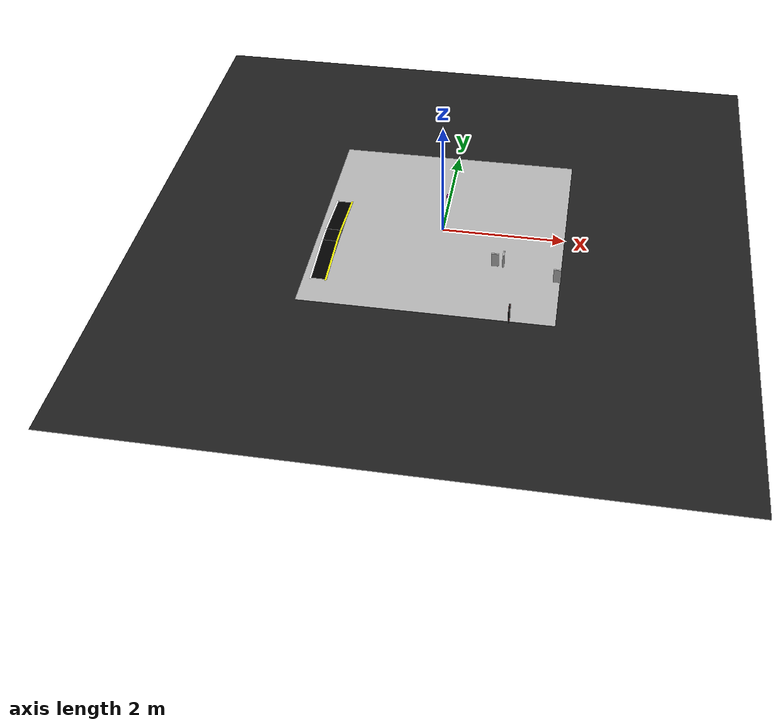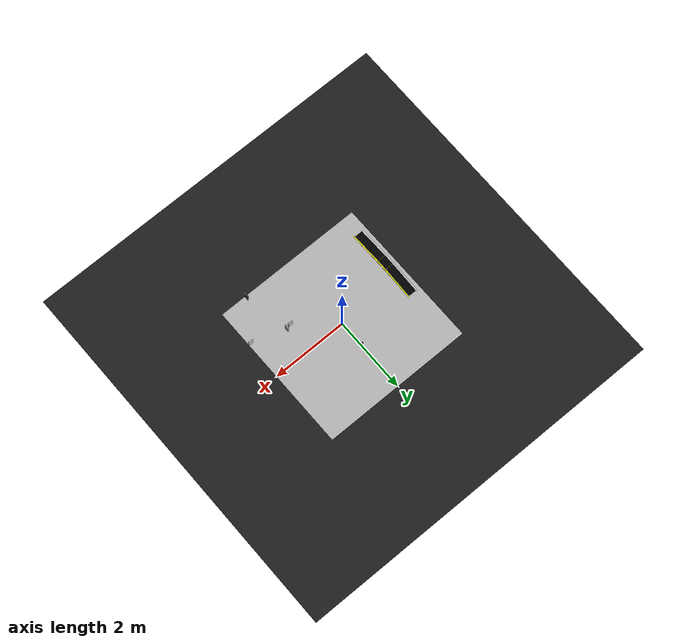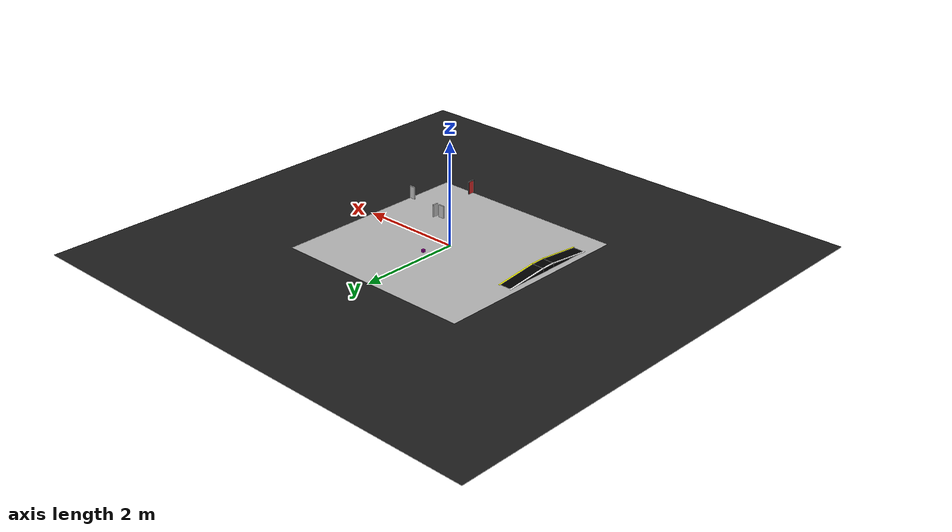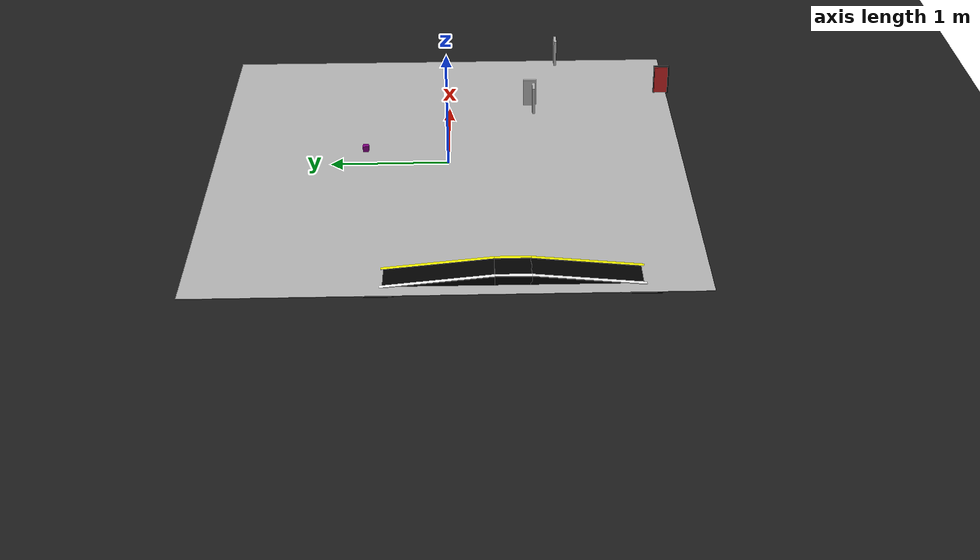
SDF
<sdf version="1.7">
 <world name="default">
  <scene>
   <ambient>0.8 0.8 0.8 1</ambient>
   <shadows>0</shadows>
   <grid>0</grid>
   <background>0.7 0.7 0.7 1</background>
  </scene>
  <model name="course">
   <static>1</static>
   <link name="course_link">
    <collision name="course_collision">
     <geometry><plane><normal>0 0 1</normal><size>4 4</size></plane></geometry>
     <surface><friction><ode><mu>100</mu><mu2>50</mu2></ode></friction></surface>
    </collision>
    <visual name="course_visual">
     <cast_shadows>0</cast_shadows>
     <geometry><plane><normal>0 0 1</normal><size>4 4</size></plane></geometry>
     <material>
      <script>
       <uri>model://turtlebot3_autorace_2020/course/materials/scripts</uri>
       <uri>model://turtlebot3_autorace_2020/course/materials/textures</uri>
       <name>course</name>
      </script>
     </material>
    </visual>
   </link>
   <pose>0 0 0 0 0 -3.14</pose>
  </model>
  <model name="traffic_light">
   <link name="traffic_light">
    <collision name="collision"><geometry><box><size>0.12 0.025 0.01</size></box></geometry></collision>
    <visual name="visual">
     <geometry><box><size>0.12 0.025 0.25</size></box></geometry>
     <material>
      <script>
       <uri>model://turtlebot3_autorace_2020/traffic_light/materials/scripts</uri>
       <uri>model://turtlebot3_autorace_2020/traffic_light/materials/textures</uri>
       <name>traffic_light_red</name>
      </script>
     </material>
    </visual>
   </link>
   <plugin name="traffic_light_plugin" filename="libtraffic_light_plugin.so"/>
   <static>1</static>
   <pose>1.3 -1.95 0.13 0 0 -1.57</pose>
  </model>
  <model name="traffic_light">
   <link name="traffic_light">
    <collision name="collision"><geometry><box><size>0.12 0.025 0.01</size></box></geometry></collision>
    <visual name="visual">
     <geometry><box><size>0.12 0.025 0.25</size></box></geometry>
     <material>
      <script>
       <uri>model://turtlebot3_autorace_2020/traffic_light/materials/scripts</uri>
       <uri>model://turtlebot3_autorace_2020/traffic_light/materials/textures</uri>
       <name>traffic_light_red</name>
      </script>
     </material>
    </visual>
   </link>
   <plugin name="traffic_light_plugin" filename="libtraffic_light_plugin.so"/>
   <static>1</static>
   <pose>1.3 -1.95 0.13 0 0 -1.57</pose>
  </model>
  <model name="cover_back">
   <static>1</static>
   <link name="cover_link">
    <pose>1.3 -1.95 0.13 0 0 -1.57</pose>
    <visual name="cover_visual">
     <pose>0 0.0135 0 0 -0 0</pose>
     <geometry><box><size>0.12 0.001 0.25</size></box></geometry>
     <material><ambient>0 0 0 1</ambient><diffuse>0 0 0 1</diffuse></material>
    </visual>
   </link>
  </model>
  <model name="black_cover_box">
   <static>1</static>
   <link name="black_cover_link">
    <pose>1.3 -1.951 0.13 0 0 -1.57</pose>
    <visual name="black_cover_visual">
     <geometry><box><size>0.14 0.023 0.27</size></box></geometry>
     <material><ambient>0 0 0 1</ambient><diffuse>0 0 0 1</diffuse></material>
    </visual>
   </link>
  </model>
  <model name="traffic_intersection">
   <static>1</static>
   <link name="box">
    <collision name="collision"><geometry><box><size>0.12 0.025 0.25</size></box></geometry></collision>
    <visual name="visual">
     <geometry><box><size>0.12 0.025 0.25</size></box></geometry>
     <material>
      <script>
       <uri>model://turtlebot3_autorace_2020/traffic_intersection/materials/scripts</uri>
       <uri>model://turtlebot3_autorace_2020/traffic_intersection/materials/textures</uri>
       <name>traffic_intersection</name>
      </script>
     </material>
    </visual>
   </link>
   <pose>1.95 -1 0.125 0 -0 0</pose>
  </model>
  <model name="traffic_noentry">
   <static>1</static>
   <link name="box">
    <collision name="collision"><geometry><box><size>0.12 0.025 0.25</size></box></geometry></collision>
    <visual name="visual">
     <geometry><box><size>0.12 0.025 0.25</size></box></geometry>
     <material>
      <script>
       <uri>model://turtlebot3_autorace_2020/traffic_noentry/materials/scripts</uri>
       <uri>model://turtlebot3_autorace_2020/traffic_noentry/materials/textures</uri>
       <name>traffic_noentry</name>
      </script>
     </material>
    </visual>
   </link>
   <pose>0.95 -0.758 0.125 0 -0 0</pose>
  </model>
  <model name="traffic_right">
   <static>1</static>
   <link name="box">
    <collision name="collision"><geometry><box><size>0.12 0.025 0.25</size></box></geometry></collision>
    <visual name="visual">
     <geometry><box><size>0.12 0.025 0.25</size></box></geometry>
     <material>
      <script>
       <uri>model://turtlebot3_autorace_2020/traffic_right/materials/scripts</uri>
       <uri>model://turtlebot3_autorace_2020/traffic_right/materials/textures</uri>
       <name>traffic_right</name>
      </script>
     </material>
    </visual>
   </link>
   <pose>1.08 -0.728 0.125 0 0 -1.57</pose>
  </model>
  <light name="sun" type="directional">
   <pose>0 0 10 0 -0 0</pose>
   <diffuse>0.8 0.8 0.8 1</diffuse>
   <specular>0.1 0.1 0.1 1</specular>
   <attenuation>
    <range>1000</range>
    <constant>0.9</constant>
    <linear>0.01</linear>
    <quadratic>0.001</quadratic>
   </attenuation>
   <direction>-0.5 0.5 -1</direction>
   <spot><inner_angle>0</inner_angle><outer_angle>0</outer_angle><falloff>0</falloff></spot>
  </light>
  <model name="ground2">
   <pose>0 0 -0.1 0 -0 0</pose>
   <static>1</static>
   <link name="ground">
    <collision name="ground_coll"><geometry><box><size>8 8 0.01</size></box></geometry></collision>
    <visual name="ground_vis">
     <geometry><box><size>10 10 0.01</size></box></geometry>
     <material>
      <script><uri>file://media/materials/scripts/gazebo.material</uri><name>Gazebo/FlatBlack</name></script>
     </material>
    </visual>
   </link>
  </model>
  <gravity>0 0 -9.8</gravity>
  <magnetic_field>6e-06 2.3e-05 -4.2e-05</magnetic_field>
  <atmosphere type="adiabatic"/>
  <physics name="default_physics" default="0" type="ode">
   <max_step_size>0.001</max_step_size>
   <real_time_factor>1</real_time_factor>
   <real_time_update_rate>1000</real_time_update_rate>
  </physics>
  <spherical_coordinates>
   <surface_model>EARTH_WGS84</surface_model>
   <latitude_deg>0</latitude_deg>
   <longitude_deg>0</longitude_deg>
   <elevation>0</elevation>
   <heading_deg>0</heading_deg>
  </spherical_coordinates>
  <light name="user_point_light_1" type="point">
   <pose>-1.64815 0.604519 1 0 -0 0</pose>
   <diffuse>0.5 0.5 0.5 1</diffuse>
   <specular>0.1 0.1 0.1 1</specular>
   <attenuation>
    <range>20</range>
    <constant>0.5</constant>
    <linear>0.01</linear>
    <quadratic>0.001</quadratic>
   </attenuation>
   <cast_shadows>0</cast_shadows>
   <direction>0 0 -1</direction>
   <spot><inner_angle>0</inner_angle><outer_angle>0</outer_angle><falloff>0</falloff></spot>
  </light>
  <light name="user_point_light_2" type="point">
   <pose>1.63854 1.69565 1 0 -0 0</pose>
   <diffuse>0.5 0.5 0.5 1</diffuse>
   <specular>0.1 0.1 0.1 1</specular>
   <attenuation>
    <range>20</range>
    <constant>0.5</constant>
    <linear>0.01</linear>
    <quadratic>0.001</quadratic>
   </attenuation>
   <cast_shadows>0</cast_shadows>
   <direction>0 0 -1</direction>
   <spot><inner_angle>0</inner_angle><outer_angle>0</outer_angle><falloff>0</falloff></spot>
  </light>
  <light name="user_point_light_3" type="point">
   <pose>0.42 -3.31 1 0 -0 0</pose>
   <diffuse>0.5 0.5 0.5 1</diffuse>
   <specular>0.1 0.1 0.1 1</specular>
   <attenuation>
    <range>20</range>
    <constant>0.5</constant>
    <linear>0.01</linear>
    <quadratic>0.001</quadratic>
   </attenuation>
   <cast_shadows>0</cast_shadows>
   <direction>0 0 -1</direction>
   <spot><inner_angle>0</inner_angle><outer_angle>0</outer_angle><falloff>0</falloff></spot>
  </light>
  <model name="moving_box">
   <pose>-0.011968 0.697078 0.163072 0 -0 0</pose>
   <link name="link">
    <gravity>0</gravity>
    <kinematic>1</kinematic>
    <collision name="collision"><geometry><box><size>0.05 0.05 0.05</size></box></geometry></collision>
    <visual name="visual">
     <geometry><box><size>0.05 0.05 0.05</size></box></geometry>
     <material>
      <ambient>0.5 0 0.5 1</ambient>
      <diffuse>0.5 0 0.5 1</diffuse>
      <transparency>0.9</transparency>
     </material>
    </visual>
    <inertial>
     <inertia><ixx>1</ixx><ixy>0</ixy><ixz>0</ixz><iyy>1</iyy><iyz>0</iyz><izz>1</izz></inertia>
     <mass>1</mass>
    </inertial>
   </link>
   <plugin name="dynamic_obstacle_plugin" filename="libdynamic_obstacle_plugin.so"/>
  </model>
  <model name="slope_ramp">
   <static>1</static>
   <link name="link">
    <collision name="collision">
     <geometry><box><size>0.25 1 0.1</size></box></geometry>
     <pose>-1.756 -1.13 0.05 0 -0 0</pose>
    </collision>
    <visual name="visual">
     <geometry><box><size>0.25 1 0.1</size></box></geometry>
     <pose>-1.756 -1.13 0.05 0 -0 0</pose>
     <material><ambient>0 0 0 1</ambient><diffuse>0 0 0 1</diffuse></material>
    </visual>
   </link>
   <pose>0 0 0.05 0.1 -0 0</pose>
  </model>
  <model name="slope_ramp2">
   <static>1</static>
   <link name="link">
    <collision name="collision">
     <geometry><box><size>0.25 1 0.1</size></box></geometry>
     <pose>-1.756 0.13 0.05 0 -0 0</pose>
    </collision>
    <visual name="visual">
     <geometry><box><size>0.25 1 0.1</size></box></geometry>
     <pose>-1.756 0.13 0.05 0 -0 0</pose>
     <material><ambient>0 0 0 1</ambient><diffuse>0 0 0 1</diffuse></material>
    </visual>
   </link>
   <pose>0 0 -0.05 -0.1 0 0</pose>
  </model>
  <model name="slope_ramp3">
   <static>1</static>
   <link name="link">
    <collision name="collision">
     <geometry><box><size>0.25 0.28 0.1</size></box></geometry>
     <pose>-1.756 -0.5 0 0 -0 0</pose>
    </collision>
    <visual name="visual">
     <geometry><box><size>0.25 0.28 0.1</size></box></geometry>
     <pose>-1.756 -0.5 0 0 -0 0</pose>
     <material><ambient>0 0 0 1</ambient><diffuse>0 0 0 1</diffuse></material>
    </visual>
   </link>
   <pose>0 0 0.0365 0 -0 0</pose>
  </model>
  <model name="white_line">
   <static>1</static>
   <link name="link">
    <visual name="visual">
     <geometry><box><size>0.03 1 0.005</size></box></geometry>
     <material><ambient>1 1 1 1</ambient><diffuse>1 1 1 1</diffuse></material>
    </visual>
    <collision name="collision"><geometry><box><size>0.03 1 0.005</size></box></geometry></collision>
    <pose>-1.88 0.13 0.037 -0.1 0 0</pose>
   </link>
  </model>
  <model name="yellow_line">
   <static>1</static>
   <link name="link">
    <visual name="visual">
     <geometry><box><size>0.03 1 0.005</size></box></geometry>
     <material><ambient>1 1 0 1</ambient><diffuse>1 1 0 1</diffuse></material>
    </visual>
    <collision name="collision"><geometry><box><size>0.03 1 0.005</size></box></geometry></collision>
    <pose>-1.632 0.13 0.037 -0.1 0 0</pose>
   </link>
  </model>
  <model name="white_line2">
   <static>1</static>
   <link name="link">
    <visual name="visual">
     <geometry><box><size>0.03 1 0.005</size></box></geometry>
     <material><ambient>1 1 1 1</ambient><diffuse>1 1 1 1</diffuse></material>
    </visual>
    <collision name="collision"><geometry><box><size>0.03 1 0.005</size></box></geometry></collision>
    <pose>-1.88 -1.13 0.037 0.1 -0 0</pose>
   </link>
  </model>
  <model name="yellow_line2">
   <static>1</static>
   <link name="link">
    <visual name="visual">
     <geometry><box><size>0.03 1 0.005</size></box></geometry>
     <material><ambient>1 1 0 1</ambient><diffuse>1 1 0 1</diffuse></material>
    </visual>
    <collision name="collision"><geometry><box><size>0.03 1 0.005</size></box></geometry></collision>
    <pose>-1.632 -1.13 0.037 0.1 -0 0</pose>
   </link>
  </model>
  <model name="white_line3">
   <static>1</static>
   <link name="link">
    <visual name="visual">
     <geometry><box><size>0.03 0.28 0.005</size></box></geometry>
     <material><ambient>1 1 1 1</ambient><diffuse>1 1 1 1</diffuse></material>
    </visual>
    <collision name="collision"><geometry><box><size>0.03 1 0.005</size></box></geometry></collision>
    <pose>-1.88 -0.5 0.087 0 -0 0</pose>
   </link>
  </model>
  <model name="yellow_line3">
   <static>1</static>
   <link name="link">
    <visual name="visual">
     <geometry><box><size>0.03 0.28 0.005</size></box></geometry>
     <material><ambient>1 1 0 1</ambient><diffuse>1 1 0 1</diffuse></material>
    </visual>
    <collision name="collision"><geometry><box><size>0.03 1 0.005</size></box></geometry></collision>
    <pose>-1.632 -0.5 0.087 0 -0 0</pose>
   </link>
  </model>
  <audio><device>default</device></audio>
 </world>
</sdf>
